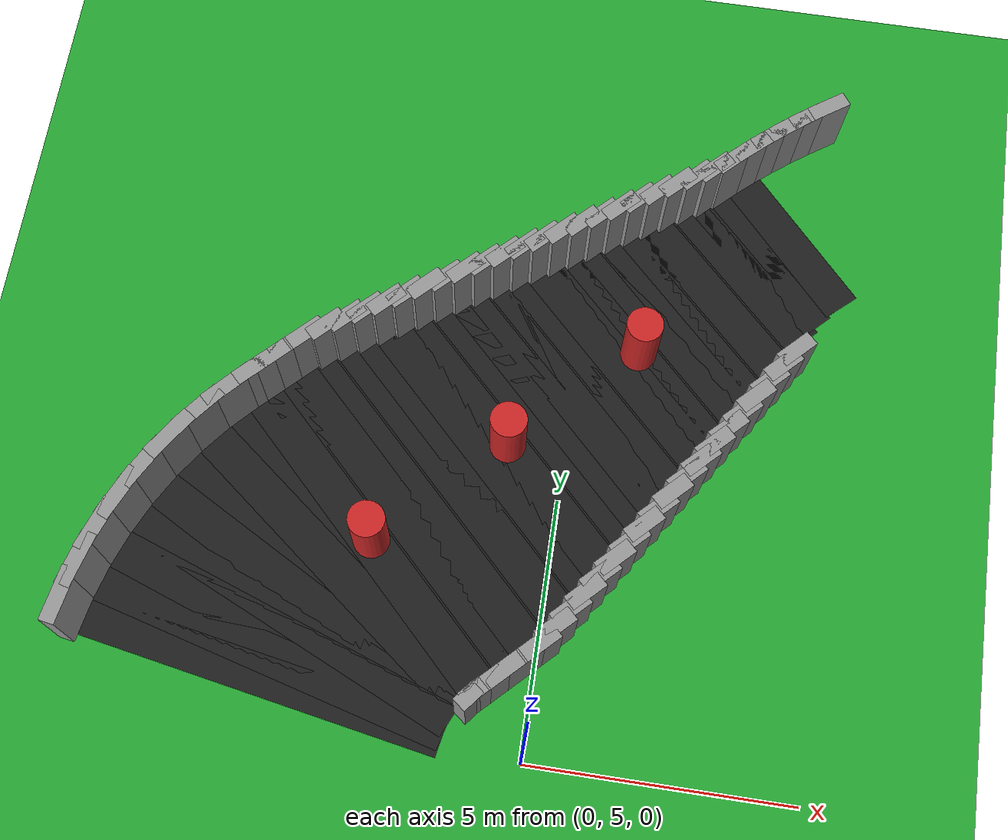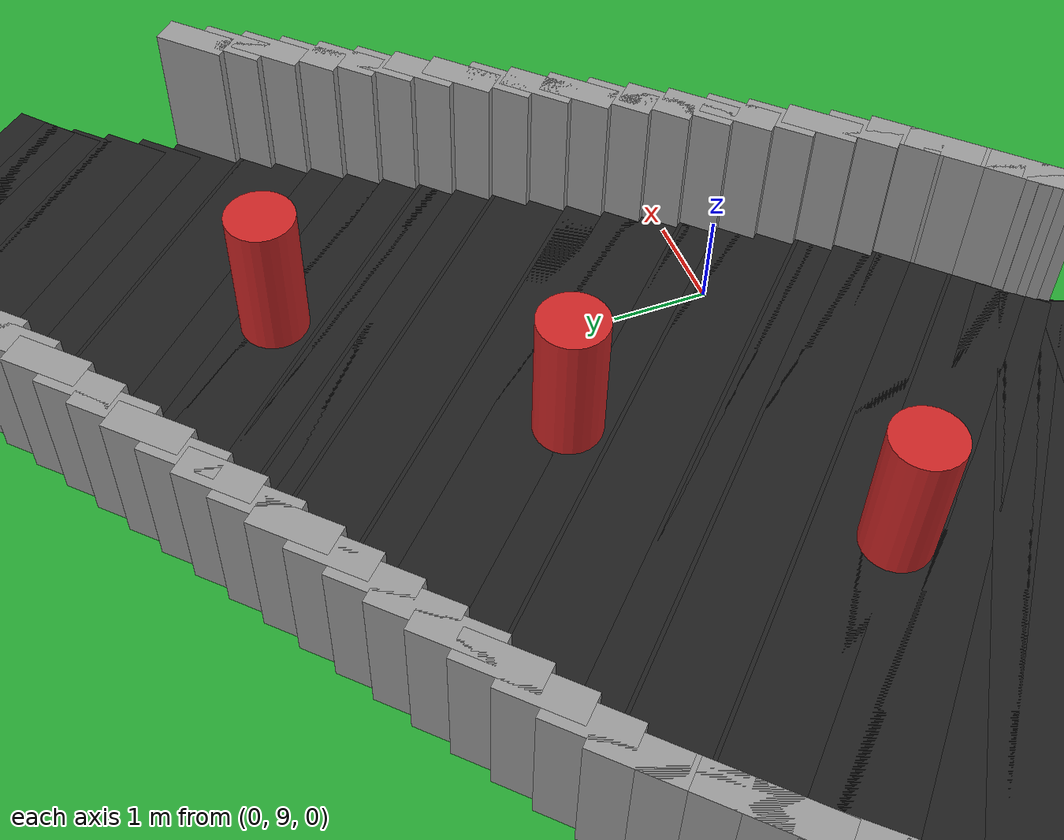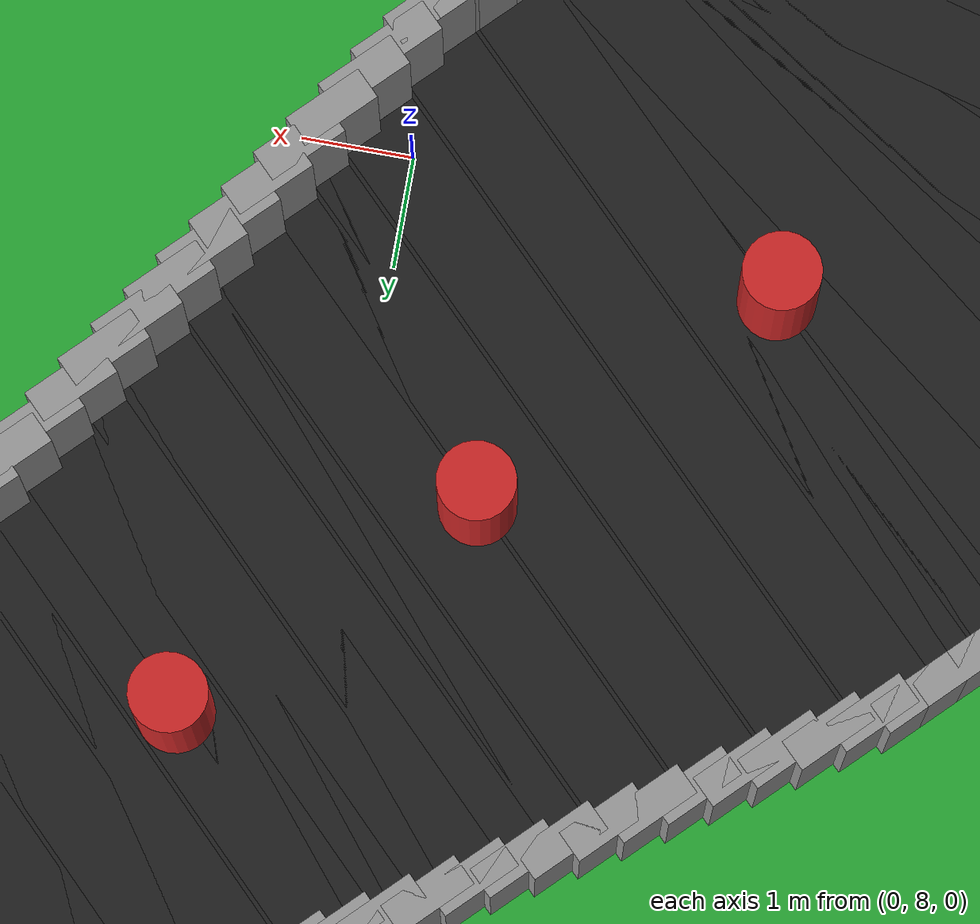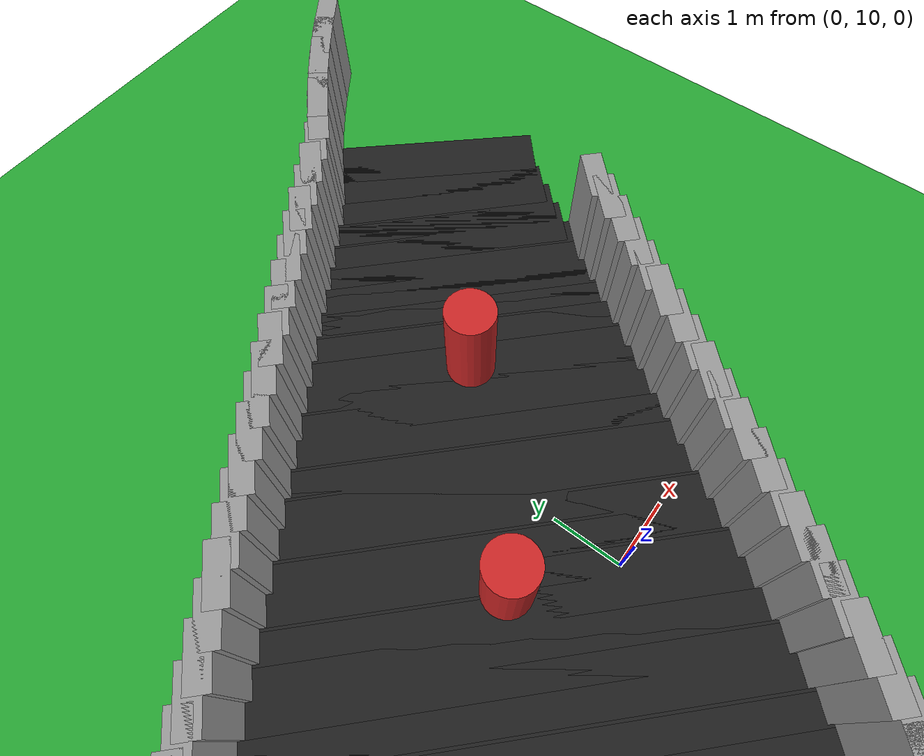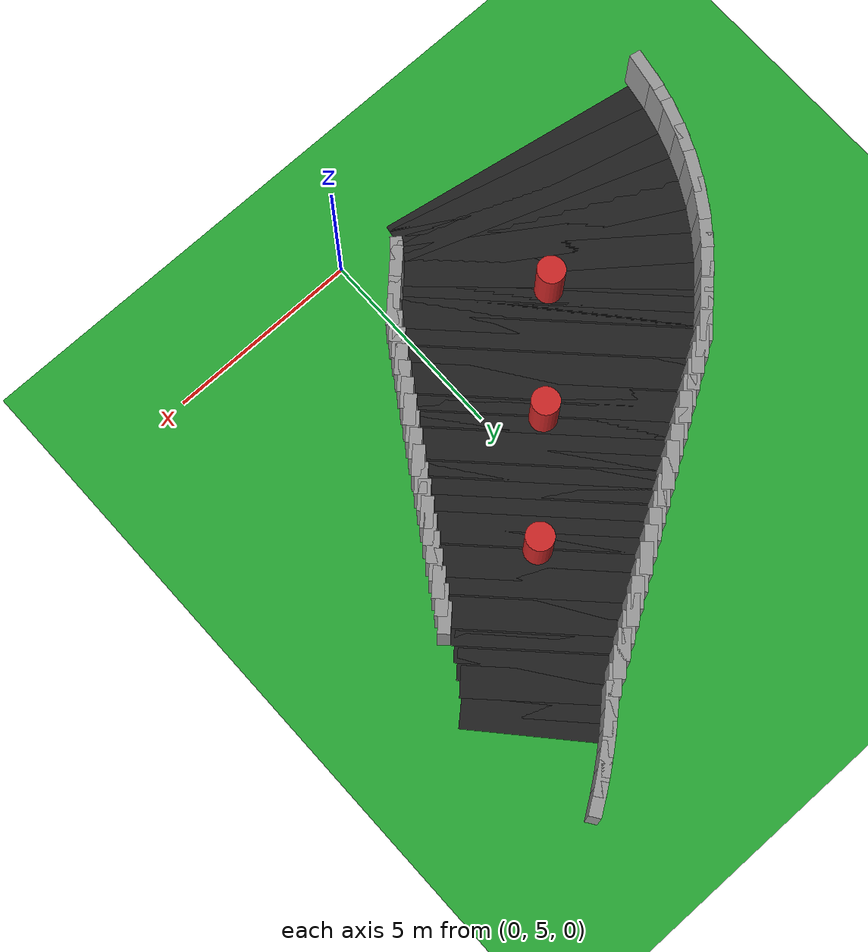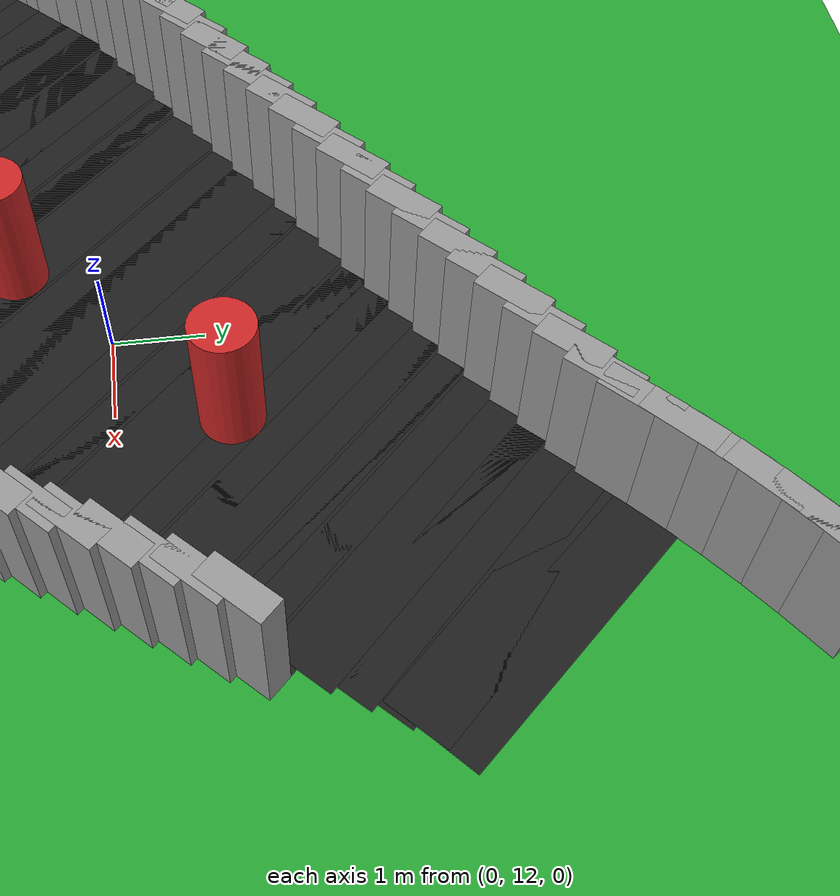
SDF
<sdf version="1.6">
 <world name="obstacle_taper">
  <include><uri>model://sun</uri></include>
  <model name="ground_plane">
   <static>true</static>
   <link name="link">
    <collision name="collision">
     <surface><friction><ode><mu>100</mu><mu2>50</mu2></ode></friction></surface>
     <geometry><plane><normal>0 0 1</normal><size>120 120</size></plane></geometry>
    </collision>
    <visual name="visual">
     <geometry><plane><normal>0 0 1</normal><size>120 120</size></plane></geometry>
     <material>
      <script><uri>file://media/materials/scripts/gazebo.material</uri><name>Gazebo/Green</name></script>
     </material>
    </visual>
   </link>
  </model>
  <model name="curbR_206">
   <static>true</static>
   <pose>4.196 18.428 0.750 0 0 -2.53618</pose>
   <link name="link">
    <collision name="collision"><geometry><box><size>0.810 0.300 1.500</size></box></geometry></collision>
    <visual name="visual">
     <geometry><box><size>0.810 0.300 1.500</size></box></geometry>
     <material>
      <script><uri>file://media/materials/scripts/gazebo.material</uri><name>Gazebo/Grey</name></script>
     </material>
    </visual>
   </link>
  </model>
  <model name="curbR_207">
   <static>true</static>
   <pose>3.830 18.166 0.750 0 0 -2.50346</pose>
   <link name="link">
    <collision name="collision"><geometry><box><size>0.810 0.300 1.500</size></box></geometry></collision>
    <visual name="visual">
     <geometry><box><size>0.810 0.300 1.500</size></box></geometry>
     <material>
      <script><uri>file://media/materials/scripts/gazebo.material</uri><name>Gazebo/Grey</name></script>
     </material>
    </visual>
   </link>
  </model>
  <model name="curbR_208">
   <static>true</static>
   <pose>3.473 17.892 0.750 0 0 -2.47073</pose>
   <link name="link">
    <collision name="collision"><geometry><box><size>0.810 0.300 1.500</size></box></geometry></collision>
    <visual name="visual">
     <geometry><box><size>0.810 0.300 1.500</size></box></geometry>
     <material>
      <script><uri>file://media/materials/scripts/gazebo.material</uri><name>Gazebo/Grey</name></script>
     </material>
    </visual>
   </link>
  </model>
  <model name="curbR_209">
   <static>true</static>
   <pose>3.125 17.607 0.750 0 0 -2.43801</pose>
   <link name="link">
    <collision name="collision"><geometry><box><size>0.810 0.300 1.500</size></box></geometry></collision>
    <visual name="visual">
     <geometry><box><size>0.810 0.300 1.500</size></box></geometry>
     <material>
      <script><uri>file://media/materials/scripts/gazebo.material</uri><name>Gazebo/Grey</name></script>
     </material>
    </visual>
   </link>
  </model>
  <model name="asphalt_210">
   <static>true</static>
   <pose>3.962 16.014 0.005 0 0 -2.40528</pose>
   <link name="link">
    <visual name="visual">
     <geometry><box><size>0.753 3.200 0.010</size></box></geometry>
     <material>
      <script><uri>file://media/materials/scripts/gazebo.material</uri><name>Gazebo/Black</name></script>
     </material>
    </visual>
   </link>
  </model>
  <model name="curbR_210">
   <static>true</static>
   <pose>2.787 17.310 0.750 0 0 -2.40528</pose>
   <link name="link">
    <collision name="collision"><geometry><box><size>0.810 0.300 1.500</size></box></geometry></collision>
    <visual name="visual">
     <geometry><box><size>0.810 0.300 1.500</size></box></geometry>
     <material>
      <script><uri>file://media/materials/scripts/gazebo.material</uri><name>Gazebo/Grey</name></script>
     </material>
    </visual>
   </link>
  </model>
  <model name="asphalt_211">
   <static>true</static>
   <pose>3.676 15.745 0.005 0 0 -2.37256</pose>
   <link name="link">
    <visual name="visual">
     <geometry><box><size>0.753 3.200 0.010</size></box></geometry>
     <material>
      <script><uri>file://media/materials/scripts/gazebo.material</uri><name>Gazebo/Black</name></script>
     </material>
    </visual>
   </link>
  </model>
  <model name="curbR_211">
   <static>true</static>
   <pose>2.459 17.003 0.750 0 0 -2.37256</pose>
   <link name="link">
    <collision name="collision"><geometry><box><size>0.810 0.300 1.500</size></box></geometry></collision>
    <visual name="visual">
     <geometry><box><size>0.810 0.300 1.500</size></box></geometry>
     <material>
      <script><uri>file://media/materials/scripts/gazebo.material</uri><name>Gazebo/Grey</name></script>
     </material>
    </visual>
   </link>
  </model>
  <model name="asphalt_212">
   <static>true</static>
   <pose>3.393 15.468 0.005 0 0 -2.35619</pose>
   <link name="link">
    <visual name="visual">
     <geometry><box><size>0.760 3.302 0.010</size></box></geometry>
     <material>
      <script><uri>file://media/materials/scripts/gazebo.material</uri><name>Gazebo/Black</name></script>
     </material>
    </visual>
   </link>
  </model>
  <model name="curbR_212">
   <static>true</static>
   <pose>2.120 16.741 0.750 0 0 -2.35619</pose>
   <link name="link">
    <collision name="collision"><geometry><box><size>0.760 0.300 1.500</size></box></geometry></collision>
    <visual name="visual">
     <geometry><box><size>0.760 0.300 1.500</size></box></geometry>
     <material>
      <script><uri>file://media/materials/scripts/gazebo.material</uri><name>Gazebo/Grey</name></script>
     </material>
    </visual>
   </link>
  </model>
  <model name="asphalt_213">
   <static>true</static>
   <pose>3.110 15.185 0.005 0 0 -2.35619</pose>
   <link name="link">
    <visual name="visual">
     <geometry><box><size>0.760 3.479 0.010</size></box></geometry>
     <material>
      <script><uri>file://media/materials/scripts/gazebo.material</uri><name>Gazebo/Black</name></script>
     </material>
    </visual>
   </link>
  </model>
  <model name="curbR_213">
   <static>true</static>
   <pose>1.774 16.521 0.750 0 0 -2.35619</pose>
   <link name="link">
    <collision name="collision"><geometry><box><size>0.760 0.300 1.500</size></box></geometry></collision>
    <visual name="visual">
     <geometry><box><size>0.760 0.300 1.500</size></box></geometry>
     <material>
      <script><uri>file://media/materials/scripts/gazebo.material</uri><name>Gazebo/Grey</name></script>
     </material>
    </visual>
   </link>
  </model>
  <model name="asphalt_214">
   <static>true</static>
   <pose>2.827 14.902 0.005 0 0 -2.35619</pose>
   <link name="link">
    <visual name="visual">
     <geometry><box><size>0.760 3.655 0.010</size></box></geometry>
     <material>
      <script><uri>file://media/materials/scripts/gazebo.material</uri><name>Gazebo/Black</name></script>
     </material>
    </visual>
   </link>
  </model>
  <model name="curbR_214">
   <static>true</static>
   <pose>1.429 16.300 0.750 0 0 -2.35619</pose>
   <link name="link">
    <collision name="collision"><geometry><box><size>0.760 0.300 1.500</size></box></geometry></collision>
    <visual name="visual">
     <geometry><box><size>0.760 0.300 1.500</size></box></geometry>
     <material>
      <script><uri>file://media/materials/scripts/gazebo.material</uri><name>Gazebo/Grey</name></script>
     </material>
    </visual>
   </link>
  </model>
  <model name="asphalt_215">
   <static>true</static>
   <pose>2.545 14.619 0.005 0 0 -2.35619</pose>
   <link name="link">
    <visual name="visual">
     <geometry><box><size>0.760 3.832 0.010</size></box></geometry>
     <material>
      <script><uri>file://media/materials/scripts/gazebo.material</uri><name>Gazebo/Black</name></script>
     </material>
    </visual>
   </link>
  </model>
  <model name="curbL_215">
   <static>true</static>
   <pose>4.006 13.158 0.750 0 0 -2.35619</pose>
   <link name="link">
    <collision name="collision"><geometry><box><size>0.760 0.300 1.500</size></box></geometry></collision>
    <visual name="visual">
     <geometry><box><size>0.760 0.300 1.500</size></box></geometry>
     <material>
      <script><uri>file://media/materials/scripts/gazebo.material</uri><name>Gazebo/Grey</name></script>
     </material>
    </visual>
   </link>
  </model>
  <model name="curbR_215">
   <static>true</static>
   <pose>1.084 16.080 0.750 0 0 -2.35619</pose>
   <link name="link">
    <collision name="collision"><geometry><box><size>0.760 0.300 1.500</size></box></geometry></collision>
    <visual name="visual">
     <geometry><box><size>0.760 0.300 1.500</size></box></geometry>
     <material>
      <script><uri>file://media/materials/scripts/gazebo.material</uri><name>Gazebo/Grey</name></script>
     </material>
    </visual>
   </link>
  </model>
  <model name="asphalt_216">
   <static>true</static>
   <pose>2.262 14.336 0.005 0 0 -2.35619</pose>
   <link name="link">
    <visual name="visual">
     <geometry><box><size>0.760 4.009 0.010</size></box></geometry>
     <material>
      <script><uri>file://media/materials/scripts/gazebo.material</uri><name>Gazebo/Black</name></script>
     </material>
    </visual>
   </link>
  </model>
  <model name="curbL_216">
   <static>true</static>
   <pose>3.785 12.813 0.750 0 0 -2.35619</pose>
   <link name="link">
    <collision name="collision"><geometry><box><size>0.760 0.300 1.500</size></box></geometry></collision>
    <visual name="visual">
     <geometry><box><size>0.760 0.300 1.500</size></box></geometry>
     <material>
      <script><uri>file://media/materials/scripts/gazebo.material</uri><name>Gazebo/Grey</name></script>
     </material>
    </visual>
   </link>
  </model>
  <model name="curbR_216">
   <static>true</static>
   <pose>0.738 15.860 0.750 0 0 -2.35619</pose>
   <link name="link">
    <collision name="collision"><geometry><box><size>0.760 0.300 1.500</size></box></geometry></collision>
    <visual name="visual">
     <geometry><box><size>0.760 0.300 1.500</size></box></geometry>
     <material>
      <script><uri>file://media/materials/scripts/gazebo.material</uri><name>Gazebo/Grey</name></script>
     </material>
    </visual>
   </link>
  </model>
  <model name="asphalt_217">
   <static>true</static>
   <pose>1.979 14.053 0.005 0 0 -2.35619</pose>
   <link name="link">
    <visual name="visual">
     <geometry><box><size>0.760 4.186 0.010</size></box></geometry>
     <material>
      <script><uri>file://media/materials/scripts/gazebo.material</uri><name>Gazebo/Black</name></script>
     </material>
    </visual>
   </link>
  </model>
  <model name="curbL_217">
   <static>true</static>
   <pose>3.565 12.467 0.750 0 0 -2.35619</pose>
   <link name="link">
    <collision name="collision"><geometry><box><size>0.760 0.300 1.500</size></box></geometry></collision>
    <visual name="visual">
     <geometry><box><size>0.760 0.300 1.500</size></box></geometry>
     <material>
      <script><uri>file://media/materials/scripts/gazebo.material</uri><name>Gazebo/Grey</name></script>
     </material>
    </visual>
   </link>
  </model>
  <model name="curbR_217">
   <static>true</static>
   <pose>0.393 15.639 0.750 0 0 -2.35619</pose>
   <link name="link">
    <collision name="collision"><geometry><box><size>0.760 0.300 1.500</size></box></geometry></collision>
    <visual name="visual">
     <geometry><box><size>0.760 0.300 1.500</size></box></geometry>
     <material>
      <script><uri>file://media/materials/scripts/gazebo.material</uri><name>Gazebo/Grey</name></script>
     </material>
    </visual>
   </link>
  </model>
  <model name="asphalt_218">
   <static>true</static>
   <pose>1.696 13.770 0.005 0 0 -2.35619</pose>
   <link name="link">
    <visual name="visual">
     <geometry><box><size>0.760 4.362 0.010</size></box></geometry>
     <material>
      <script><uri>file://media/materials/scripts/gazebo.material</uri><name>Gazebo/Black</name></script>
     </material>
    </visual>
   </link>
  </model>
  <model name="curbL_218">
   <static>true</static>
   <pose>3.344 12.122 0.750 0 0 -2.35619</pose>
   <link name="link">
    <collision name="collision"><geometry><box><size>0.760 0.300 1.500</size></box></geometry></collision>
    <visual name="visual">
     <geometry><box><size>0.760 0.300 1.500</size></box></geometry>
     <material>
      <script><uri>file://media/materials/scripts/gazebo.material</uri><name>Gazebo/Grey</name></script>
     </material>
    </visual>
   </link>
  </model>
  <model name="curbR_218">
   <static>true</static>
   <pose>0.048 15.419 0.750 0 0 -2.35619</pose>
   <link name="link">
    <collision name="collision"><geometry><box><size>0.760 0.300 1.500</size></box></geometry></collision>
    <visual name="visual">
     <geometry><box><size>0.760 0.300 1.500</size></box></geometry>
     <material>
      <script><uri>file://media/materials/scripts/gazebo.material</uri><name>Gazebo/Grey</name></script>
     </material>
    </visual>
   </link>
  </model>
  <model name="asphalt_219">
   <static>true</static>
   <pose>1.413 13.488 0.005 0 0 -2.35619</pose>
   <link name="link">
    <visual name="visual">
     <geometry><box><size>0.760 4.539 0.010</size></box></geometry>
     <material>
      <script><uri>file://media/materials/scripts/gazebo.material</uri><name>Gazebo/Black</name></script>
     </material>
    </visual>
   </link>
  </model>
  <model name="curbL_219">
   <static>true</static>
   <pose>3.124 11.777 0.750 0 0 -2.35619</pose>
   <link name="link">
    <collision name="collision"><geometry><box><size>0.760 0.300 1.500</size></box></geometry></collision>
    <visual name="visual">
     <geometry><box><size>0.760 0.300 1.500</size></box></geometry>
     <material>
      <script><uri>file://media/materials/scripts/gazebo.material</uri><name>Gazebo/Grey</name></script>
     </material>
    </visual>
   </link>
  </model>
  <model name="curbR_219">
   <static>true</static>
   <pose>-0.298 15.198 0.750 0 0 -2.35619</pose>
   <link name="link">
    <collision name="collision"><geometry><box><size>0.760 0.300 1.500</size></box></geometry></collision>
    <visual name="visual">
     <geometry><box><size>0.760 0.300 1.500</size></box></geometry>
     <material>
      <script><uri>file://media/materials/scripts/gazebo.material</uri><name>Gazebo/Grey</name></script>
     </material>
    </visual>
   </link>
  </model>
  <model name="asphalt_220">
   <static>true</static>
   <pose>1.130 13.205 0.005 0 0 -2.35619</pose>
   <link name="link">
    <visual name="visual">
     <geometry><box><size>0.760 4.716 0.010</size></box></geometry>
     <material>
      <script><uri>file://media/materials/scripts/gazebo.material</uri><name>Gazebo/Black</name></script>
     </material>
    </visual>
   </link>
  </model>
  <model name="curbL_220">
   <static>true</static>
   <pose>2.904 11.431 0.750 0 0 -2.35619</pose>
   <link name="link">
    <collision name="collision"><geometry><box><size>0.760 0.300 1.500</size></box></geometry></collision>
    <visual name="visual">
     <geometry><box><size>0.760 0.300 1.500</size></box></geometry>
     <material>
      <script><uri>file://media/materials/scripts/gazebo.material</uri><name>Gazebo/Grey</name></script>
     </material>
    </visual>
   </link>
  </model>
  <model name="curbR_220">
   <static>true</static>
   <pose>-0.643 14.978 0.750 0 0 -2.35619</pose>
   <link name="link">
    <collision name="collision"><geometry><box><size>0.760 0.300 1.500</size></box></geometry></collision>
    <visual name="visual">
     <geometry><box><size>0.760 0.300 1.500</size></box></geometry>
     <material>
      <script><uri>file://media/materials/scripts/gazebo.material</uri><name>Gazebo/Grey</name></script>
     </material>
    </visual>
   </link>
  </model>
  <model name="asphalt_221">
   <static>true</static>
   <pose>0.848 12.922 0.005 0 0 -2.35619</pose>
   <link name="link">
    <visual name="visual">
     <geometry><box><size>0.760 4.893 0.010</size></box></geometry>
     <material>
      <script><uri>file://media/materials/scripts/gazebo.material</uri><name>Gazebo/Black</name></script>
     </material>
    </visual>
   </link>
  </model>
  <model name="curbL_221">
   <static>true</static>
   <pose>2.683 11.086 0.750 0 0 -2.35619</pose>
   <link name="link">
    <collision name="collision"><geometry><box><size>0.760 0.300 1.500</size></box></geometry></collision>
    <visual name="visual">
     <geometry><box><size>0.760 0.300 1.500</size></box></geometry>
     <material>
      <script><uri>file://media/materials/scripts/gazebo.material</uri><name>Gazebo/Grey</name></script>
     </material>
    </visual>
   </link>
  </model>
  <model name="curbR_221">
   <static>true</static>
   <pose>-0.988 14.758 0.750 0 0 -2.35619</pose>
   <link name="link">
    <collision name="collision"><geometry><box><size>0.760 0.300 1.500</size></box></geometry></collision>
    <visual name="visual">
     <geometry><box><size>0.760 0.300 1.500</size></box></geometry>
     <material>
      <script><uri>file://media/materials/scripts/gazebo.material</uri><name>Gazebo/Grey</name></script>
     </material>
    </visual>
   </link>
  </model>
  <model name="asphalt_222">
   <static>true</static>
   <pose>0.565 12.639 0.005 0 0 -2.35619</pose>
   <link name="link">
    <visual name="visual">
     <geometry><box><size>0.760 5.069 0.010</size></box></geometry>
     <material>
      <script><uri>file://media/materials/scripts/gazebo.material</uri><name>Gazebo/Black</name></script>
     </material>
    </visual>
   </link>
  </model>
  <model name="curbL_222">
   <static>true</static>
   <pose>2.463 10.741 0.750 0 0 -2.35619</pose>
   <link name="link">
    <collision name="collision"><geometry><box><size>0.760 0.300 1.500</size></box></geometry></collision>
    <visual name="visual">
     <geometry><box><size>0.760 0.300 1.500</size></box></geometry>
     <material>
      <script><uri>file://media/materials/scripts/gazebo.material</uri><name>Gazebo/Grey</name></script>
     </material>
    </visual>
   </link>
  </model>
  <model name="curbR_222">
   <static>true</static>
   <pose>-1.334 14.537 0.750 0 0 -2.35619</pose>
   <link name="link">
    <collision name="collision"><geometry><box><size>0.760 0.300 1.500</size></box></geometry></collision>
    <visual name="visual">
     <geometry><box><size>0.760 0.300 1.500</size></box></geometry>
     <material>
      <script><uri>file://media/materials/scripts/gazebo.material</uri><name>Gazebo/Grey</name></script>
     </material>
    </visual>
   </link>
  </model>
  <model name="asphalt_223">
   <static>true</static>
   <pose>0.282 12.356 0.005 0 0 -2.35619</pose>
   <link name="link">
    <visual name="visual">
     <geometry><box><size>0.760 5.246 0.010</size></box></geometry>
     <material>
      <script><uri>file://media/materials/scripts/gazebo.material</uri><name>Gazebo/Black</name></script>
     </material>
    </visual>
   </link>
  </model>
  <model name="curbL_223">
   <static>true</static>
   <pose>2.243 10.395 0.750 0 0 -2.35619</pose>
   <link name="link">
    <collision name="collision"><geometry><box><size>0.760 0.300 1.500</size></box></geometry></collision>
    <visual name="visual">
     <geometry><box><size>0.760 0.300 1.500</size></box></geometry>
     <material>
      <script><uri>file://media/materials/scripts/gazebo.material</uri><name>Gazebo/Grey</name></script>
     </material>
    </visual>
   </link>
  </model>
  <model name="curbR_223">
   <static>true</static>
   <pose>-1.679 14.317 0.750 0 0 -2.35619</pose>
   <link name="link">
    <collision name="collision"><geometry><box><size>0.760 0.300 1.500</size></box></geometry></collision>
    <visual name="visual">
     <geometry><box><size>0.760 0.300 1.500</size></box></geometry>
     <material>
      <script><uri>file://media/materials/scripts/gazebo.material</uri><name>Gazebo/Grey</name></script>
     </material>
    </visual>
   </link>
  </model>
  <model name="asphalt_224">
   <static>true</static>
   <pose>-0.001 12.073 0.005 0 0 -2.35619</pose>
   <link name="link">
    <visual name="visual">
     <geometry><box><size>0.760 5.423 0.010</size></box></geometry>
     <material>
      <script><uri>file://media/materials/scripts/gazebo.material</uri><name>Gazebo/Black</name></script>
     </material>
    </visual>
   </link>
  </model>
  <model name="curbL_224">
   <static>true</static>
   <pose>2.022 10.050 0.750 0 0 -2.35619</pose>
   <link name="link">
    <collision name="collision"><geometry><box><size>0.760 0.300 1.500</size></box></geometry></collision>
    <visual name="visual">
     <geometry><box><size>0.760 0.300 1.500</size></box></geometry>
     <material>
      <script><uri>file://media/materials/scripts/gazebo.material</uri><name>Gazebo/Grey</name></script>
     </material>
    </visual>
   </link>
  </model>
  <model name="curbR_224">
   <static>true</static>
   <pose>-2.024 14.097 0.750 0 0 -2.35619</pose>
   <link name="link">
    <collision name="collision"><geometry><box><size>0.760 0.300 1.500</size></box></geometry></collision>
    <visual name="visual">
     <geometry><box><size>0.760 0.300 1.500</size></box></geometry>
     <material>
      <script><uri>file://media/materials/scripts/gazebo.material</uri><name>Gazebo/Grey</name></script>
     </material>
    </visual>
   </link>
  </model>
  <model name="asphalt_225">
   <static>true</static>
   <pose>-0.284 11.791 0.005 0 0 -2.35619</pose>
   <link name="link">
    <visual name="visual">
     <geometry><box><size>0.760 5.600 0.010</size></box></geometry>
     <material>
      <script><uri>file://media/materials/scripts/gazebo.material</uri><name>Gazebo/Black</name></script>
     </material>
    </visual>
   </link>
  </model>
  <model name="curbL_225">
   <static>true</static>
   <pose>1.802 9.705 0.750 0 0 -2.35619</pose>
   <link name="link">
    <collision name="collision"><geometry><box><size>0.760 0.300 1.500</size></box></geometry></collision>
    <visual name="visual">
     <geometry><box><size>0.760 0.300 1.500</size></box></geometry>
     <material>
      <script><uri>file://media/materials/scripts/gazebo.material</uri><name>Gazebo/Grey</name></script>
     </material>
    </visual>
   </link>
  </model>
  <model name="curbR_225">
   <static>true</static>
   <pose>-2.370 13.876 0.750 0 0 -2.35619</pose>
   <link name="link">
    <collision name="collision"><geometry><box><size>0.760 0.300 1.500</size></box></geometry></collision>
    <visual name="visual">
     <geometry><box><size>0.760 0.300 1.500</size></box></geometry>
     <material>
      <script><uri>file://media/materials/scripts/gazebo.material</uri><name>Gazebo/Grey</name></script>
     </material>
    </visual>
   </link>
  </model>
  <model name="asphalt_226">
   <static>true</static>
   <pose>-0.567 11.508 0.005 0 0 -2.35619</pose>
   <link name="link">
    <visual name="visual">
     <geometry><box><size>0.760 5.776 0.010</size></box></geometry>
     <material>
      <script><uri>file://media/materials/scripts/gazebo.material</uri><name>Gazebo/Black</name></script>
     </material>
    </visual>
   </link>
  </model>
  <model name="curbL_226">
   <static>true</static>
   <pose>1.582 9.359 0.750 0 0 -2.35619</pose>
   <link name="link">
    <collision name="collision"><geometry><box><size>0.760 0.300 1.500</size></box></geometry></collision>
    <visual name="visual">
     <geometry><box><size>0.760 0.300 1.500</size></box></geometry>
     <material>
      <script><uri>file://media/materials/scripts/gazebo.material</uri><name>Gazebo/Grey</name></script>
     </material>
    </visual>
   </link>
  </model>
  <model name="curbR_226">
   <static>true</static>
   <pose>-2.715 13.656 0.750 0 0 -2.35619</pose>
   <link name="link">
    <collision name="collision"><geometry><box><size>0.760 0.300 1.500</size></box></geometry></collision>
    <visual name="visual">
     <geometry><box><size>0.760 0.300 1.500</size></box></geometry>
     <material>
      <script><uri>file://media/materials/scripts/gazebo.material</uri><name>Gazebo/Grey</name></script>
     </material>
    </visual>
   </link>
  </model>
  <model name="asphalt_227">
   <static>true</static>
   <pose>-0.850 11.225 0.005 0 0 -2.35619</pose>
   <link name="link">
    <visual name="visual">
     <geometry><box><size>0.760 5.953 0.010</size></box></geometry>
     <material>
      <script><uri>file://media/materials/scripts/gazebo.material</uri><name>Gazebo/Black</name></script>
     </material>
    </visual>
   </link>
  </model>
  <model name="curbL_227">
   <static>true</static>
   <pose>1.361 9.014 0.750 0 0 -2.35619</pose>
   <link name="link">
    <collision name="collision"><geometry><box><size>0.760 0.300 1.500</size></box></geometry></collision>
    <visual name="visual">
     <geometry><box><size>0.760 0.300 1.500</size></box></geometry>
     <material>
      <script><uri>file://media/materials/scripts/gazebo.material</uri><name>Gazebo/Grey</name></script>
     </material>
    </visual>
   </link>
  </model>
  <model name="curbR_227">
   <static>true</static>
   <pose>-3.060 13.436 0.750 0 0 -2.35619</pose>
   <link name="link">
    <collision name="collision"><geometry><box><size>0.760 0.300 1.500</size></box></geometry></collision>
    <visual name="visual">
     <geometry><box><size>0.760 0.300 1.500</size></box></geometry>
     <material>
      <script><uri>file://media/materials/scripts/gazebo.material</uri><name>Gazebo/Grey</name></script>
     </material>
    </visual>
   </link>
  </model>
  <model name="asphalt_228">
   <static>true</static>
   <pose>-1.132 10.942 0.005 0 0 -2.35619</pose>
   <link name="link">
    <visual name="visual">
     <geometry><box><size>0.760 6.130 0.010</size></box></geometry>
     <material>
      <script><uri>file://media/materials/scripts/gazebo.material</uri><name>Gazebo/Black</name></script>
     </material>
    </visual>
   </link>
  </model>
  <model name="curbL_228">
   <static>true</static>
   <pose>1.141 8.669 0.750 0 0 -2.35619</pose>
   <link name="link">
    <collision name="collision"><geometry><box><size>0.760 0.300 1.500</size></box></geometry></collision>
    <visual name="visual">
     <geometry><box><size>0.760 0.300 1.500</size></box></geometry>
     <material>
      <script><uri>file://media/materials/scripts/gazebo.material</uri><name>Gazebo/Grey</name></script>
     </material>
    </visual>
   </link>
  </model>
  <model name="curbR_228">
   <static>true</static>
   <pose>-3.406 13.215 0.750 0 0 -2.35619</pose>
   <link name="link">
    <collision name="collision"><geometry><box><size>0.760 0.300 1.500</size></box></geometry></collision>
    <visual name="visual">
     <geometry><box><size>0.760 0.300 1.500</size></box></geometry>
     <material>
      <script><uri>file://media/materials/scripts/gazebo.material</uri><name>Gazebo/Grey</name></script>
     </material>
    </visual>
   </link>
  </model>
  <model name="asphalt_229">
   <static>true</static>
   <pose>-1.415 10.659 0.005 0 0 -2.35619</pose>
   <link name="link">
    <visual name="visual">
     <geometry><box><size>0.760 6.307 0.010</size></box></geometry>
     <material>
      <script><uri>file://media/materials/scripts/gazebo.material</uri><name>Gazebo/Black</name></script>
     </material>
    </visual>
   </link>
  </model>
  <model name="curbL_229">
   <static>true</static>
   <pose>0.921 8.323 0.750 0 0 -2.35619</pose>
   <link name="link">
    <collision name="collision"><geometry><box><size>0.760 0.300 1.500</size></box></geometry></collision>
    <visual name="visual">
     <geometry><box><size>0.760 0.300 1.500</size></box></geometry>
     <material>
      <script><uri>file://media/materials/scripts/gazebo.material</uri><name>Gazebo/Grey</name></script>
     </material>
    </visual>
   </link>
  </model>
  <model name="curbR_229">
   <static>true</static>
   <pose>-3.751 12.995 0.750 0 0 -2.35619</pose>
   <link name="link">
    <collision name="collision"><geometry><box><size>0.760 0.300 1.500</size></box></geometry></collision>
    <visual name="visual">
     <geometry><box><size>0.760 0.300 1.500</size></box></geometry>
     <material>
      <script><uri>file://media/materials/scripts/gazebo.material</uri><name>Gazebo/Grey</name></script>
     </material>
    </visual>
   </link>
  </model>
  <model name="asphalt_230">
   <static>true</static>
   <pose>-1.698 10.376 0.005 0 0 -2.35619</pose>
   <link name="link">
    <visual name="visual">
     <geometry><box><size>0.760 6.483 0.010</size></box></geometry>
     <material>
      <script><uri>file://media/materials/scripts/gazebo.material</uri><name>Gazebo/Black</name></script>
     </material>
    </visual>
   </link>
  </model>
  <model name="curbL_230">
   <static>true</static>
   <pose>0.700 7.978 0.750 0 0 -2.35619</pose>
   <link name="link">
    <collision name="collision"><geometry><box><size>0.760 0.300 1.500</size></box></geometry></collision>
    <visual name="visual">
     <geometry><box><size>0.760 0.300 1.500</size></box></geometry>
     <material>
      <script><uri>file://media/materials/scripts/gazebo.material</uri><name>Gazebo/Grey</name></script>
     </material>
    </visual>
   </link>
  </model>
  <model name="curbR_230">
   <static>true</static>
   <pose>-4.096 12.775 0.750 0 0 -2.35619</pose>
   <link name="link">
    <collision name="collision"><geometry><box><size>0.760 0.300 1.500</size></box></geometry></collision>
    <visual name="visual">
     <geometry><box><size>0.760 0.300 1.500</size></box></geometry>
     <material>
      <script><uri>file://media/materials/scripts/gazebo.material</uri><name>Gazebo/Grey</name></script>
     </material>
    </visual>
   </link>
  </model>
  <model name="asphalt_231">
   <static>true</static>
   <pose>-1.981 10.094 0.005 0 0 -2.35619</pose>
   <link name="link">
    <visual name="visual">
     <geometry><box><size>0.760 6.660 0.010</size></box></geometry>
     <material>
      <script><uri>file://media/materials/scripts/gazebo.material</uri><name>Gazebo/Black</name></script>
     </material>
    </visual>
   </link>
  </model>
  <model name="curbL_231">
   <static>true</static>
   <pose>0.480 7.633 0.750 0 0 -2.35619</pose>
   <link name="link">
    <collision name="collision"><geometry><box><size>0.760 0.300 1.500</size></box></geometry></collision>
    <visual name="visual">
     <geometry><box><size>0.760 0.300 1.500</size></box></geometry>
     <material>
      <script><uri>file://media/materials/scripts/gazebo.material</uri><name>Gazebo/Grey</name></script>
     </material>
    </visual>
   </link>
  </model>
  <model name="curbR_231">
   <static>true</static>
   <pose>-4.442 12.554 0.750 0 0 -2.35619</pose>
   <link name="link">
    <collision name="collision"><geometry><box><size>0.760 0.300 1.500</size></box></geometry></collision>
    <visual name="visual">
     <geometry><box><size>0.760 0.300 1.500</size></box></geometry>
     <material>
      <script><uri>file://media/materials/scripts/gazebo.material</uri><name>Gazebo/Grey</name></script>
     </material>
    </visual>
   </link>
  </model>
  <model name="asphalt_232">
   <static>true</static>
   <pose>-2.264 9.811 0.005 0 0 -2.35619</pose>
   <link name="link">
    <visual name="visual">
     <geometry><box><size>0.760 6.837 0.010</size></box></geometry>
     <material>
      <script><uri>file://media/materials/scripts/gazebo.material</uri><name>Gazebo/Black</name></script>
     </material>
    </visual>
   </link>
  </model>
  <model name="curbL_232">
   <static>true</static>
   <pose>0.260 7.287 0.750 0 0 -2.35619</pose>
   <link name="link">
    <collision name="collision"><geometry><box><size>0.760 0.300 1.500</size></box></geometry></collision>
    <visual name="visual">
     <geometry><box><size>0.760 0.300 1.500</size></box></geometry>
     <material>
      <script><uri>file://media/materials/scripts/gazebo.material</uri><name>Gazebo/Grey</name></script>
     </material>
    </visual>
   </link>
  </model>
  <model name="curbR_232">
   <static>true</static>
   <pose>-4.787 12.334 0.750 0 0 -2.35619</pose>
   <link name="link">
    <collision name="collision"><geometry><box><size>0.760 0.300 1.500</size></box></geometry></collision>
    <visual name="visual">
     <geometry><box><size>0.760 0.300 1.500</size></box></geometry>
     <material>
      <script><uri>file://media/materials/scripts/gazebo.material</uri><name>Gazebo/Grey</name></script>
     </material>
    </visual>
   </link>
  </model>
  <model name="asphalt_233">
   <static>true</static>
   <pose>-2.547 9.528 0.005 0 0 -2.35619</pose>
   <link name="link">
    <visual name="visual">
     <geometry><box><size>0.760 7.000 0.010</size></box></geometry>
     <material>
      <script><uri>file://media/materials/scripts/gazebo.material</uri><name>Gazebo/Black</name></script>
     </material>
    </visual>
   </link>
  </model>
  <model name="curbL_233">
   <static>true</static>
   <pose>0.034 6.947 0.750 0 0 -2.35619</pose>
   <link name="link">
    <collision name="collision"><geometry><box><size>0.760 0.300 1.500</size></box></geometry></collision>
    <visual name="visual">
     <geometry><box><size>0.760 0.300 1.500</size></box></geometry>
     <material>
      <script><uri>file://media/materials/scripts/gazebo.material</uri><name>Gazebo/Grey</name></script>
     </material>
    </visual>
   </link>
  </model>
  <model name="curbR_233">
   <static>true</static>
   <pose>-5.127 12.109 0.750 0 0 -2.35619</pose>
   <link name="link">
    <collision name="collision"><geometry><box><size>0.760 0.300 1.500</size></box></geometry></collision>
    <visual name="visual">
     <geometry><box><size>0.760 0.300 1.500</size></box></geometry>
     <material>
      <script><uri>file://media/materials/scripts/gazebo.material</uri><name>Gazebo/Grey</name></script>
     </material>
    </visual>
   </link>
  </model>
  <model name="asphalt_234">
   <static>true</static>
   <pose>-2.829 9.245 0.005 0 0 -2.35619</pose>
   <link name="link">
    <visual name="visual">
     <geometry><box><size>0.760 7.000 0.010</size></box></geometry>
     <material>
      <script><uri>file://media/materials/scripts/gazebo.material</uri><name>Gazebo/Black</name></script>
     </material>
    </visual>
   </link>
  </model>
  <model name="curbL_234">
   <static>true</static>
   <pose>-0.248 6.664 0.750 0 0 -2.35619</pose>
   <link name="link">
    <collision name="collision"><geometry><box><size>0.760 0.300 1.500</size></box></geometry></collision>
    <visual name="visual">
     <geometry><box><size>0.760 0.300 1.500</size></box></geometry>
     <material>
      <script><uri>file://media/materials/scripts/gazebo.material</uri><name>Gazebo/Grey</name></script>
     </material>
    </visual>
   </link>
  </model>
  <model name="curbR_234">
   <static>true</static>
   <pose>-5.410 11.826 0.750 0 0 -2.35619</pose>
   <link name="link">
    <collision name="collision"><geometry><box><size>0.760 0.300 1.500</size></box></geometry></collision>
    <visual name="visual">
     <geometry><box><size>0.760 0.300 1.500</size></box></geometry>
     <material>
      <script><uri>file://media/materials/scripts/gazebo.material</uri><name>Gazebo/Grey</name></script>
     </material>
    </visual>
   </link>
  </model>
  <model name="asphalt_235">
   <static>true</static>
   <pose>-3.112 8.962 0.005 0 0 -2.35619</pose>
   <link name="link">
    <visual name="visual">
     <geometry><box><size>0.760 7.000 0.010</size></box></geometry>
     <material>
      <script><uri>file://media/materials/scripts/gazebo.material</uri><name>Gazebo/Black</name></script>
     </material>
    </visual>
   </link>
  </model>
  <model name="curbL_235">
   <static>true</static>
   <pose>-0.531 6.381 0.750 0 0 -2.35619</pose>
   <link name="link">
    <collision name="collision"><geometry><box><size>0.760 0.300 1.500</size></box></geometry></collision>
    <visual name="visual">
     <geometry><box><size>0.760 0.300 1.500</size></box></geometry>
     <material>
      <script><uri>file://media/materials/scripts/gazebo.material</uri><name>Gazebo/Grey</name></script>
     </material>
    </visual>
   </link>
  </model>
  <model name="curbR_235">
   <static>true</static>
   <pose>-5.693 11.543 0.750 0 0 -2.35619</pose>
   <link name="link">
    <collision name="collision"><geometry><box><size>0.760 0.300 1.500</size></box></geometry></collision>
    <visual name="visual">
     <geometry><box><size>0.760 0.300 1.500</size></box></geometry>
     <material>
      <script><uri>file://media/materials/scripts/gazebo.material</uri><name>Gazebo/Grey</name></script>
     </material>
    </visual>
   </link>
  </model>
  <model name="asphalt_236">
   <static>true</static>
   <pose>-3.395 8.679 0.005 0 0 -2.35619</pose>
   <link name="link">
    <visual name="visual">
     <geometry><box><size>0.760 7.000 0.010</size></box></geometry>
     <material>
      <script><uri>file://media/materials/scripts/gazebo.material</uri><name>Gazebo/Black</name></script>
     </material>
    </visual>
   </link>
  </model>
  <model name="curbL_236">
   <static>true</static>
   <pose>-0.814 6.098 0.750 0 0 -2.35619</pose>
   <link name="link">
    <collision name="collision"><geometry><box><size>0.760 0.300 1.500</size></box></geometry></collision>
    <visual name="visual">
     <geometry><box><size>0.760 0.300 1.500</size></box></geometry>
     <material>
      <script><uri>file://media/materials/scripts/gazebo.material</uri><name>Gazebo/Grey</name></script>
     </material>
    </visual>
   </link>
  </model>
  <model name="curbR_236">
   <static>true</static>
   <pose>-5.976 11.260 0.750 0 0 -2.35619</pose>
   <link name="link">
    <collision name="collision"><geometry><box><size>0.760 0.300 1.500</size></box></geometry></collision>
    <visual name="visual">
     <geometry><box><size>0.760 0.300 1.500</size></box></geometry>
     <material>
      <script><uri>file://media/materials/scripts/gazebo.material</uri><name>Gazebo/Grey</name></script>
     </material>
    </visual>
   </link>
  </model>
  <model name="asphalt_237">
   <static>true</static>
   <pose>-3.674 8.389 0.005 0 0 -2.31557</pose>
   <link name="link">
    <visual name="visual">
     <geometry><box><size>0.766 7.000 0.010</size></box></geometry>
     <material>
      <script><uri>file://media/materials/scripts/gazebo.material</uri><name>Gazebo/Black</name></script>
     </material>
    </visual>
   </link>
  </model>
  <model name="curbL_237">
   <static>true</static>
   <pose>-0.993 5.917 0.750 0 0 -2.31557</pose>
   <link name="link">
    <collision name="collision"><geometry><box><size>0.470 0.300 1.500</size></box></geometry></collision>
    <visual name="visual">
     <geometry><box><size>0.470 0.300 1.500</size></box></geometry>
     <material>
      <script><uri>file://media/materials/scripts/gazebo.material</uri><name>Gazebo/Grey</name></script>
     </material>
    </visual>
   </link>
  </model>
  <model name="curbR_237">
   <static>true</static>
   <pose>-6.356 10.860 0.750 0 0 -2.31557</pose>
   <link name="link">
    <collision name="collision"><geometry><box><size>1.063 0.300 1.500</size></box></geometry></collision>
    <visual name="visual">
     <geometry><box><size>1.063 0.300 1.500</size></box></geometry>
     <material>
      <script><uri>file://media/materials/scripts/gazebo.material</uri><name>Gazebo/Grey</name></script>
     </material>
    </visual>
   </link>
  </model>
  <model name="asphalt_238">
   <static>true</static>
   <pose>-3.937 8.079 0.005 0 0 -2.23432</pose>
   <link name="link">
    <visual name="visual">
     <geometry><box><size>0.766 7.000 0.010</size></box></geometry>
     <material>
      <script><uri>file://media/materials/scripts/gazebo.material</uri><name>Gazebo/Black</name></script>
     </material>
    </visual>
   </link>
  </model>
  <model name="curbL_238">
   <static>true</static>
   <pose>-1.064 5.833 0.750 0 0 -2.23432</pose>
   <link name="link">
    <collision name="collision"><geometry><box><size>0.470 0.300 1.500</size></box></geometry></collision>
    <visual name="visual">
     <geometry><box><size>0.470 0.300 1.500</size></box></geometry>
     <material>
      <script><uri>file://media/materials/scripts/gazebo.material</uri><name>Gazebo/Grey</name></script>
     </material>
    </visual>
   </link>
  </model>
  <model name="curbR_238">
   <static>true</static>
   <pose>-6.810 10.325 0.750 0 0 -2.23432</pose>
   <link name="link">
    <collision name="collision"><geometry><box><size>1.063 0.300 1.500</size></box></geometry></collision>
    <visual name="visual">
     <geometry><box><size>1.063 0.300 1.500</size></box></geometry>
     <material>
      <script><uri>file://media/materials/scripts/gazebo.material</uri><name>Gazebo/Grey</name></script>
     </material>
    </visual>
   </link>
  </model>
  <model name="asphalt_239">
   <static>true</static>
   <pose>-4.174 7.750 0.005 0 0 -2.15307</pose>
   <link name="link">
    <visual name="visual">
     <geometry><box><size>0.766 7.000 0.010</size></box></geometry>
     <material>
      <script><uri>file://media/materials/scripts/gazebo.material</uri><name>Gazebo/Black</name></script>
     </material>
    </visual>
   </link>
  </model>
  <model name="curbR_239">
   <static>true</static>
   <pose>-7.220 9.755 0.750 0 0 -2.15307</pose>
   <link name="link">
    <collision name="collision"><geometry><box><size>1.063 0.300 1.500</size></box></geometry></collision>
    <visual name="visual">
     <geometry><box><size>1.063 0.300 1.500</size></box></geometry>
     <material>
      <script><uri>file://media/materials/scripts/gazebo.material</uri><name>Gazebo/Grey</name></script>
     </material>
    </visual>
   </link>
  </model>
  <model name="asphalt_240">
   <static>true</static>
   <pose>-4.383 7.402 0.005 0 0 -2.07183</pose>
   <link name="link">
    <visual name="visual">
     <geometry><box><size>0.766 7.000 0.010</size></box></geometry>
     <material>
      <script><uri>file://media/materials/scripts/gazebo.material</uri><name>Gazebo/Black</name></script>
     </material>
    </visual>
   </link>
  </model>
  <model name="curbR_240">
   <static>true</static>
   <pose>-7.582 9.153 0.750 0 0 -2.07183</pose>
   <link name="link">
    <collision name="collision"><geometry><box><size>1.063 0.300 1.500</size></box></geometry></collision>
    <visual name="visual">
     <geometry><box><size>1.063 0.300 1.500</size></box></geometry>
     <material>
      <script><uri>file://media/materials/scripts/gazebo.material</uri><name>Gazebo/Grey</name></script>
     </material>
    </visual>
   </link>
  </model>
  <model name="asphalt_241">
   <static>true</static>
   <pose>-4.563 7.038 0.005 0 0 -1.99058</pose>
   <link name="link">
    <visual name="visual">
     <geometry><box><size>0.766 7.000 0.010</size></box></geometry>
     <material>
      <script><uri>file://media/materials/scripts/gazebo.material</uri><name>Gazebo/Black</name></script>
     </material>
    </visual>
   </link>
  </model>
  <model name="curbR_241">
   <static>true</static>
   <pose>-7.894 8.524 0.750 0 0 -1.99058</pose>
   <link name="link">
    <collision name="collision"><geometry><box><size>1.063 0.300 1.500</size></box></geometry></collision>
    <visual name="visual">
     <geometry><box><size>1.063 0.300 1.500</size></box></geometry>
     <material>
      <script><uri>file://media/materials/scripts/gazebo.material</uri><name>Gazebo/Grey</name></script>
     </material>
    </visual>
   </link>
  </model>
  <model name="asphalt_242">
   <static>true</static>
   <pose>-4.714 6.661 0.005 0 0 -1.90933</pose>
   <link name="link">
    <visual name="visual">
     <geometry><box><size>0.766 7.000 0.010</size></box></geometry>
     <material>
      <script><uri>file://media/materials/scripts/gazebo.material</uri><name>Gazebo/Black</name></script>
     </material>
    </visual>
   </link>
  </model>
  <model name="curbR_242">
   <static>true</static>
   <pose>-8.154 7.872 0.750 0 0 -1.90933</pose>
   <link name="link">
    <collision name="collision"><geometry><box><size>1.063 0.300 1.500</size></box></geometry></collision>
    <visual name="visual">
     <geometry><box><size>1.063 0.300 1.500</size></box></geometry>
     <material>
      <script><uri>file://media/materials/scripts/gazebo.material</uri><name>Gazebo/Grey</name></script>
     </material>
    </visual>
   </link>
  </model>
  <model name="asphalt_243">
   <static>true</static>
   <pose>-4.833 6.273 0.005 0 0 -1.82808</pose>
   <link name="link">
    <visual name="visual">
     <geometry><box><size>0.766 7.000 0.010</size></box></geometry>
     <material>
      <script><uri>file://media/materials/scripts/gazebo.material</uri><name>Gazebo/Black</name></script>
     </material>
    </visual>
   </link>
  </model>
  <model name="curbR_243">
   <static>true</static>
   <pose>-8.360 7.201 0.750 0 0 -1.82808</pose>
   <link name="link">
    <collision name="collision"><geometry><box><size>1.063 0.300 1.500</size></box></geometry></collision>
    <visual name="visual">
     <geometry><box><size>1.063 0.300 1.500</size></box></geometry>
     <material>
      <script><uri>file://media/materials/scripts/gazebo.material</uri><name>Gazebo/Grey</name></script>
     </material>
    </visual>
   </link>
  </model>
  <model name="asphalt_244">
   <static>true</static>
   <pose>-4.920 5.877 0.005 0 0 -1.74683</pose>
   <link name="link">
    <visual name="visual">
     <geometry><box><size>0.766 7.000 0.010</size></box></geometry>
     <material>
      <script><uri>file://media/materials/scripts/gazebo.material</uri><name>Gazebo/Black</name></script>
     </material>
    </visual>
   </link>
  </model>
  <model name="curbR_244">
   <static>true</static>
   <pose>-8.511 6.515 0.750 0 0 -1.74683</pose>
   <link name="link">
    <collision name="collision"><geometry><box><size>1.063 0.300 1.500</size></box></geometry></collision>
    <visual name="visual">
     <geometry><box><size>1.063 0.300 1.500</size></box></geometry>
     <material>
      <script><uri>file://media/materials/scripts/gazebo.material</uri><name>Gazebo/Grey</name></script>
     </material>
    </visual>
   </link>
  </model>
  <model name="obs_5">
   <static>true</static>
   <pose>1.152 13.226 0.750 0 0 0</pose>
   <link name="link">
    <collision name="collision">
     <geometry><cylinder><radius>0.350</radius><length>1.500</length></cylinder></geometry>
    </collision>
    <visual name="visual">
     <geometry><cylinder><radius>0.350</radius><length>1.500</length></cylinder></geometry>
     <material>
      <script><uri>file://media/materials/scripts/gazebo.material</uri><name>Gazebo/Red</name></script>
     </material>
    </visual>
   </link>
  </model>
  <model name="obs_6">
   <static>true</static>
   <pose>-1.111 10.964 0.750 0 0 0</pose>
   <link name="link">
    <collision name="collision">
     <geometry><cylinder><radius>0.350</radius><length>1.500</length></cylinder></geometry>
    </collision>
    <visual name="visual">
     <geometry><cylinder><radius>0.350</radius><length>1.500</length></cylinder></geometry>
     <material>
      <script><uri>file://media/materials/scripts/gazebo.material</uri><name>Gazebo/Red</name></script>
     </material>
    </visual>
   </link>
  </model>
  <model name="obs_7">
   <static>true</static>
   <pose>-3.373 8.701 0.750 0 0 0</pose>
   <link name="link">
    <collision name="collision">
     <geometry><cylinder><radius>0.350</radius><length>1.500</length></cylinder></geometry>
    </collision>
    <visual name="visual">
     <geometry><cylinder><radius>0.350</radius><length>1.500</length></cylinder></geometry>
     <material>
      <script><uri>file://media/materials/scripts/gazebo.material</uri><name>Gazebo/Red</name></script>
     </material>
    </visual>
   </link>
  </model>
 </world>
</sdf>
